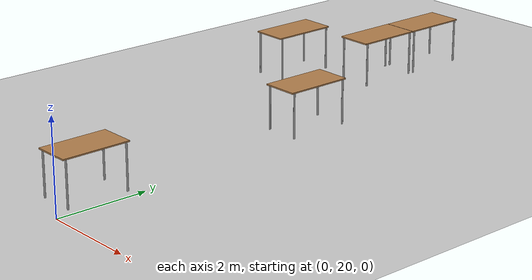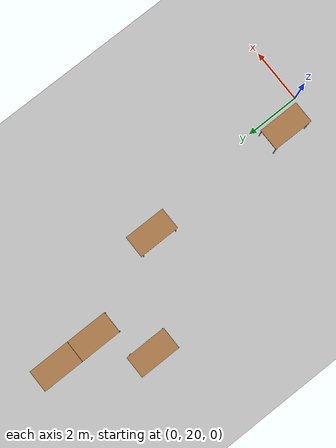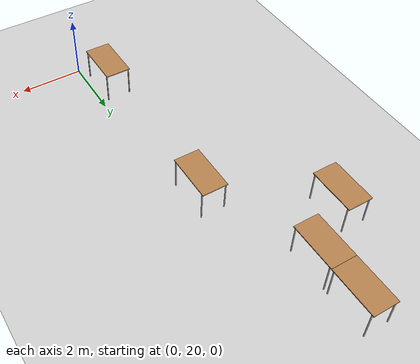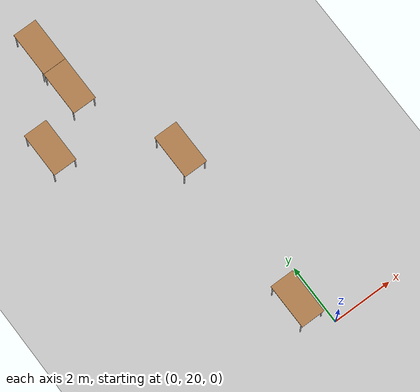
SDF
<sdf version="1.6">
 <world name="default">
  <model name="ground_plane">
   <static>1</static>
   <link name="link">
    <collision name="collision">
     <geometry><plane><normal>0 0 1</normal><size>100 100</size></plane></geometry>
     <surface>
      <contact><collide_bitmask>65535</collide_bitmask></contact>
      <friction><ode><mu>100</mu><mu2>50</mu2></ode></friction>
     </surface>
    </collision>
    <visual name="visual">
     <cast_shadows>0</cast_shadows>
     <geometry><plane><normal>0 0 1</normal><size>100 100</size></plane></geometry>
     <material>
      <script><uri>file://media/materials/scripts/gazebo.material</uri><name>Gazebo/Grey</name></script>
     </material>
    </visual>
   </link>
   <pose>-3.51447 11.9136 0 0 -0 0</pose>
  </model>
  <model name="table_clone_clone_3">
   <static>1</static>
   <link name="link">
    <collision name="surface">
     <pose>0 0 1 0 -0 0</pose>
     <geometry><box><size>1.5 0.8 0.03</size></box></geometry>
     <surface><friction><ode><mu>0.6</mu><mu2>0.6</mu2></ode></friction></surface>
    </collision>
    <visual name="visual1">
     <pose>0 0 1 0 -0 0</pose>
     <geometry><box><size>1.5 0.8 0.03</size></box></geometry>
     <material>
      <script><uri>file://media/materials/scripts/gazebo.material</uri><name>Gazebo/Wood</name></script>
     </material>
    </visual>
    <collision name="front_left_leg">
     <pose>0.68 0.38 0.5 0 -0 0</pose>
     <geometry><cylinder><radius>0.02</radius><length>1</length></cylinder></geometry>
    </collision>
    <visual name="front_left_leg">
     <pose>0.68 0.38 0.5 0 -0 0</pose>
     <geometry><cylinder><radius>0.02</radius><length>1</length></cylinder></geometry>
     <material>
      <script><uri>file://media/materials/scripts/gazebo.material</uri><name>Gazebo/Grey</name></script>
     </material>
    </visual>
    <collision name="front_right_leg">
     <pose>0.68 -0.38 0.5 0 -0 0</pose>
     <geometry><cylinder><radius>0.02</radius><length>1</length></cylinder></geometry>
    </collision>
    <visual name="front_right_leg">
     <pose>0.68 -0.38 0.5 0 -0 0</pose>
     <geometry><cylinder><radius>0.02</radius><length>1</length></cylinder></geometry>
     <material>
      <script><uri>file://media/materials/scripts/gazebo.material</uri><name>Gazebo/Grey</name></script>
     </material>
    </visual>
    <collision name="back_right_leg">
     <pose>-0.68 -0.38 0.5 0 -0 0</pose>
     <geometry><cylinder><radius>0.02</radius><length>1</length></cylinder></geometry>
    </collision>
    <visual name="back_right_leg">
     <pose>-0.68 -0.38 0.5 0 -0 0</pose>
     <geometry><cylinder><radius>0.02</radius><length>1</length></cylinder></geometry>
     <material>
      <script><uri>file://media/materials/scripts/gazebo.material</uri><name>Gazebo/Grey</name></script>
     </material>
    </visual>
    <collision name="back_left_leg">
     <pose>-0.68 0.38 0.5 0 -0 0</pose>
     <geometry><cylinder><radius>0.02</radius><length>1</length></cylinder></geometry>
    </collision>
    <visual name="back_left_leg">
     <pose>-0.68 0.38 0.5 0 -0 0</pose>
     <geometry><cylinder><radius>0.02</radius><length>1</length></cylinder></geometry>
     <material>
      <script><uri>file://media/materials/scripts/gazebo.material</uri><name>Gazebo/Grey</name></script>
     </material>
    </visual>
   </link>
   <pose>-0.618083 21.0868 0 0 0 -1.56764</pose>
  </model>
  <model name="table_clone_clone_4">
   <static>1</static>
   <link name="link">
    <collision name="surface">
     <pose>0 0 1 0 -0 0</pose>
     <geometry><box><size>1.5 0.8 0.03</size></box></geometry>
     <surface><friction><ode><mu>0.6</mu><mu2>0.6</mu2></ode></friction></surface>
    </collision>
    <visual name="visual1">
     <pose>0 0 1 0 -0 0</pose>
     <geometry><box><size>1.5 0.8 0.03</size></box></geometry>
     <material>
      <script><uri>file://media/materials/scripts/gazebo.material</uri><name>Gazebo/Wood</name></script>
     </material>
    </visual>
    <collision name="front_left_leg">
     <pose>0.68 0.38 0.5 0 -0 0</pose>
     <geometry><cylinder><radius>0.02</radius><length>1</length></cylinder></geometry>
    </collision>
    <visual name="front_left_leg">
     <pose>0.68 0.38 0.5 0 -0 0</pose>
     <geometry><cylinder><radius>0.02</radius><length>1</length></cylinder></geometry>
     <material>
      <script><uri>file://media/materials/scripts/gazebo.material</uri><name>Gazebo/Grey</name></script>
     </material>
    </visual>
    <collision name="front_right_leg">
     <pose>0.68 -0.38 0.5 0 -0 0</pose>
     <geometry><cylinder><radius>0.02</radius><length>1</length></cylinder></geometry>
    </collision>
    <visual name="front_right_leg">
     <pose>0.68 -0.38 0.5 0 -0 0</pose>
     <geometry><cylinder><radius>0.02</radius><length>1</length></cylinder></geometry>
     <material>
      <script><uri>file://media/materials/scripts/gazebo.material</uri><name>Gazebo/Grey</name></script>
     </material>
    </visual>
    <collision name="back_right_leg">
     <pose>-0.68 -0.38 0.5 0 -0 0</pose>
     <geometry><cylinder><radius>0.02</radius><length>1</length></cylinder></geometry>
    </collision>
    <visual name="back_right_leg">
     <pose>-0.68 -0.38 0.5 0 -0 0</pose>
     <geometry><cylinder><radius>0.02</radius><length>1</length></cylinder></geometry>
     <material>
      <script><uri>file://media/materials/scripts/gazebo.material</uri><name>Gazebo/Grey</name></script>
     </material>
    </visual>
    <collision name="back_left_leg">
     <pose>-0.68 0.38 0.5 0 -0 0</pose>
     <geometry><cylinder><radius>0.02</radius><length>1</length></cylinder></geometry>
    </collision>
    <visual name="back_left_leg">
     <pose>-0.68 0.38 0.5 0 -0 0</pose>
     <geometry><cylinder><radius>0.02</radius><length>1</length></cylinder></geometry>
     <material>
      <script><uri>file://media/materials/scripts/gazebo.material</uri><name>Gazebo/Grey</name></script>
     </material>
    </visual>
   </link>
   <pose>-0.645454 26.6913 0 0 0 -1.56764</pose>
  </model>
  <model name="table_clone_clone_4_clone">
   <static>1</static>
   <link name="link">
    <collision name="surface">
     <pose>0 0 1 0 -0 0</pose>
     <geometry><box><size>1.5 0.8 0.03</size></box></geometry>
     <surface><friction><ode><mu>0.6</mu><mu2>0.6</mu2></ode></friction></surface>
    </collision>
    <visual name="visual1">
     <pose>0 0 1 0 -0 0</pose>
     <geometry><box><size>1.5 0.8 0.03</size></box></geometry>
     <material>
      <script><uri>file://media/materials/scripts/gazebo.material</uri><name>Gazebo/Wood</name></script>
     </material>
    </visual>
    <collision name="front_left_leg">
     <pose>0.68 0.38 0.5 0 -0 0</pose>
     <geometry><cylinder><radius>0.02</radius><length>1</length></cylinder></geometry>
    </collision>
    <visual name="front_left_leg">
     <pose>0.68 0.38 0.5 0 -0 0</pose>
     <geometry><cylinder><radius>0.02</radius><length>1</length></cylinder></geometry>
     <material>
      <script><uri>file://media/materials/scripts/gazebo.material</uri><name>Gazebo/Grey</name></script>
     </material>
    </visual>
    <collision name="front_right_leg">
     <pose>0.68 -0.38 0.5 0 -0 0</pose>
     <geometry><cylinder><radius>0.02</radius><length>1</length></cylinder></geometry>
    </collision>
    <visual name="front_right_leg">
     <pose>0.68 -0.38 0.5 0 -0 0</pose>
     <geometry><cylinder><radius>0.02</radius><length>1</length></cylinder></geometry>
     <material>
      <script><uri>file://media/materials/scripts/gazebo.material</uri><name>Gazebo/Grey</name></script>
     </material>
    </visual>
    <collision name="back_right_leg">
     <pose>-0.68 -0.38 0.5 0 -0 0</pose>
     <geometry><cylinder><radius>0.02</radius><length>1</length></cylinder></geometry>
    </collision>
    <visual name="back_right_leg">
     <pose>-0.68 -0.38 0.5 0 -0 0</pose>
     <geometry><cylinder><radius>0.02</radius><length>1</length></cylinder></geometry>
     <material>
      <script><uri>file://media/materials/scripts/gazebo.material</uri><name>Gazebo/Grey</name></script>
     </material>
    </visual>
    <collision name="back_left_leg">
     <pose>-0.68 0.38 0.5 0 -0 0</pose>
     <geometry><cylinder><radius>0.02</radius><length>1</length></cylinder></geometry>
    </collision>
    <visual name="back_left_leg">
     <pose>-0.68 0.38 0.5 0 -0 0</pose>
     <geometry><cylinder><radius>0.02</radius><length>1</length></cylinder></geometry>
     <material>
      <script><uri>file://media/materials/scripts/gazebo.material</uri><name>Gazebo/Grey</name></script>
     </material>
    </visual>
   </link>
   <pose>-2.10949 31.7138 0 0 0 -1.56764</pose>
  </model>
  <model name="table_clone_clone_4_clone_1">
   <static>1</static>
   <link name="link">
    <collision name="surface">
     <pose>0 0 1 0 -0 0</pose>
     <geometry><box><size>1.5 0.8 0.03</size></box></geometry>
     <surface><friction><ode><mu>0.6</mu><mu2>0.6</mu2></ode></friction></surface>
    </collision>
    <visual name="visual1">
     <pose>0 0 1 0 -0 0</pose>
     <geometry><box><size>1.5 0.8 0.03</size></box></geometry>
     <material>
      <script><uri>file://media/materials/scripts/gazebo.material</uri><name>Gazebo/Wood</name></script>
     </material>
    </visual>
    <collision name="front_left_leg">
     <pose>0.68 0.38 0.5 0 -0 0</pose>
     <geometry><cylinder><radius>0.02</radius><length>1</length></cylinder></geometry>
    </collision>
    <visual name="front_left_leg">
     <pose>0.68 0.38 0.5 0 -0 0</pose>
     <geometry><cylinder><radius>0.02</radius><length>1</length></cylinder></geometry>
     <material>
      <script><uri>file://media/materials/scripts/gazebo.material</uri><name>Gazebo/Grey</name></script>
     </material>
    </visual>
    <collision name="front_right_leg">
     <pose>0.68 -0.38 0.5 0 -0 0</pose>
     <geometry><cylinder><radius>0.02</radius><length>1</length></cylinder></geometry>
    </collision>
    <visual name="front_right_leg">
     <pose>0.68 -0.38 0.5 0 -0 0</pose>
     <geometry><cylinder><radius>0.02</radius><length>1</length></cylinder></geometry>
     <material>
      <script><uri>file://media/materials/scripts/gazebo.material</uri><name>Gazebo/Grey</name></script>
     </material>
    </visual>
    <collision name="back_right_leg">
     <pose>-0.68 -0.38 0.5 0 -0 0</pose>
     <geometry><cylinder><radius>0.02</radius><length>1</length></cylinder></geometry>
    </collision>
    <visual name="back_right_leg">
     <pose>-0.68 -0.38 0.5 0 -0 0</pose>
     <geometry><cylinder><radius>0.02</radius><length>1</length></cylinder></geometry>
     <material>
      <script><uri>file://media/materials/scripts/gazebo.material</uri><name>Gazebo/Grey</name></script>
     </material>
    </visual>
    <collision name="back_left_leg">
     <pose>-0.68 0.38 0.5 0 -0 0</pose>
     <geometry><cylinder><radius>0.02</radius><length>1</length></cylinder></geometry>
    </collision>
    <visual name="back_left_leg">
     <pose>-0.68 0.38 0.5 0 -0 0</pose>
     <geometry><cylinder><radius>0.02</radius><length>1</length></cylinder></geometry>
     <material>
      <script><uri>file://media/materials/scripts/gazebo.material</uri><name>Gazebo/Grey</name></script>
     </material>
    </visual>
   </link>
   <pose>-2.10577 30.2071 0 0 0 -1.56764</pose>
  </model>
  <model name="table_clone_clone_4_clone_1_clone">
   <static>1</static>
   <link name="link">
    <collision name="surface">
     <pose>0 0 1 0 -0 0</pose>
     <geometry><box><size>1.5 0.8 0.03</size></box></geometry>
     <surface><friction><ode><mu>0.6</mu><mu2>0.6</mu2></ode></friction></surface>
    </collision>
    <visual name="visual1">
     <pose>0 0 1 0 -0 0</pose>
     <geometry><box><size>1.5 0.8 0.03</size></box></geometry>
     <material>
      <script><uri>file://media/materials/scripts/gazebo.material</uri><name>Gazebo/Wood</name></script>
     </material>
    </visual>
    <collision name="front_left_leg">
     <pose>0.68 0.38 0.5 0 -0 0</pose>
     <geometry><cylinder><radius>0.02</radius><length>1</length></cylinder></geometry>
    </collision>
    <visual name="front_left_leg">
     <pose>0.68 0.38 0.5 0 -0 0</pose>
     <geometry><cylinder><radius>0.02</radius><length>1</length></cylinder></geometry>
     <material>
      <script><uri>file://media/materials/scripts/gazebo.material</uri><name>Gazebo/Grey</name></script>
     </material>
    </visual>
    <collision name="front_right_leg">
     <pose>0.68 -0.38 0.5 0 -0 0</pose>
     <geometry><cylinder><radius>0.02</radius><length>1</length></cylinder></geometry>
    </collision>
    <visual name="front_right_leg">
     <pose>0.68 -0.38 0.5 0 -0 0</pose>
     <geometry><cylinder><radius>0.02</radius><length>1</length></cylinder></geometry>
     <material>
      <script><uri>file://media/materials/scripts/gazebo.material</uri><name>Gazebo/Grey</name></script>
     </material>
    </visual>
    <collision name="back_right_leg">
     <pose>-0.68 -0.38 0.5 0 -0 0</pose>
     <geometry><cylinder><radius>0.02</radius><length>1</length></cylinder></geometry>
    </collision>
    <visual name="back_right_leg">
     <pose>-0.68 -0.38 0.5 0 -0 0</pose>
     <geometry><cylinder><radius>0.02</radius><length>1</length></cylinder></geometry>
     <material>
      <script><uri>file://media/materials/scripts/gazebo.material</uri><name>Gazebo/Grey</name></script>
     </material>
    </visual>
    <collision name="back_left_leg">
     <pose>-0.68 0.38 0.5 0 -0 0</pose>
     <geometry><cylinder><radius>0.02</radius><length>1</length></cylinder></geometry>
    </collision>
    <visual name="back_left_leg">
     <pose>-0.68 0.38 0.5 0 -0 0</pose>
     <geometry><cylinder><radius>0.02</radius><length>1</length></cylinder></geometry>
     <material>
      <script><uri>file://media/materials/scripts/gazebo.material</uri><name>Gazebo/Grey</name></script>
     </material>
    </visual>
   </link>
   <pose>-3.6724 29.0324 0 0 0 -1.56764</pose>
  </model>
 </world>
</sdf>
